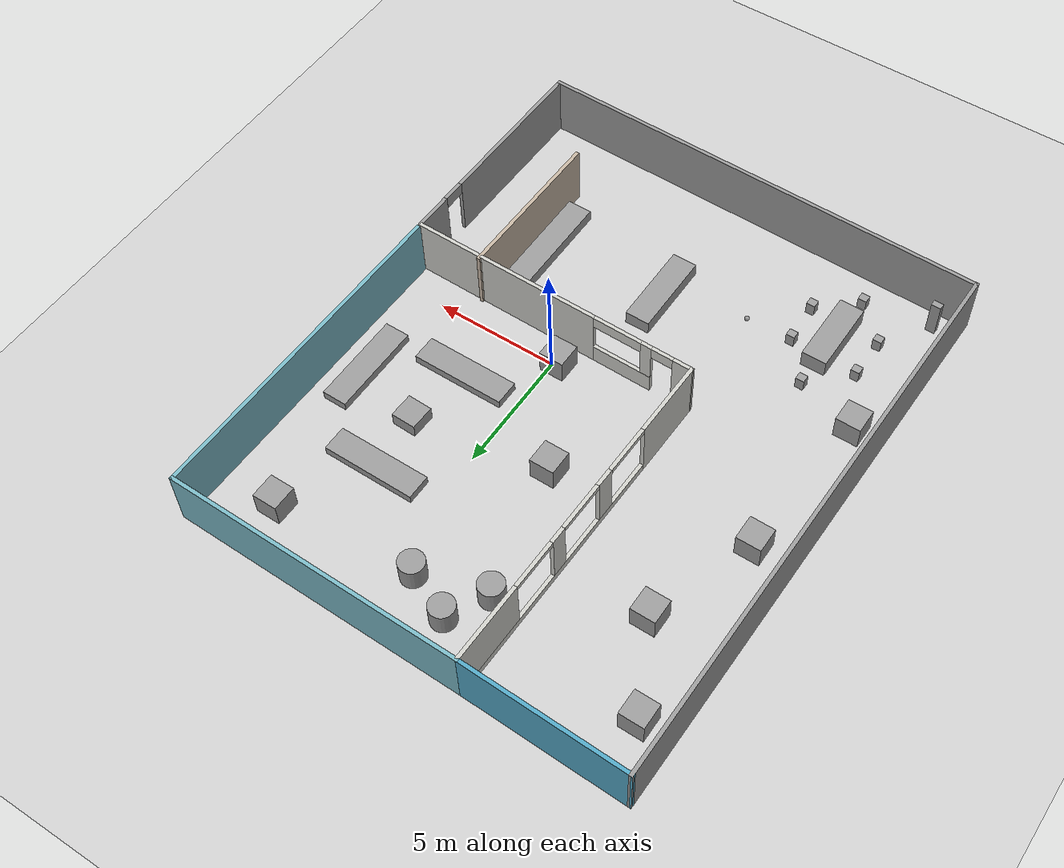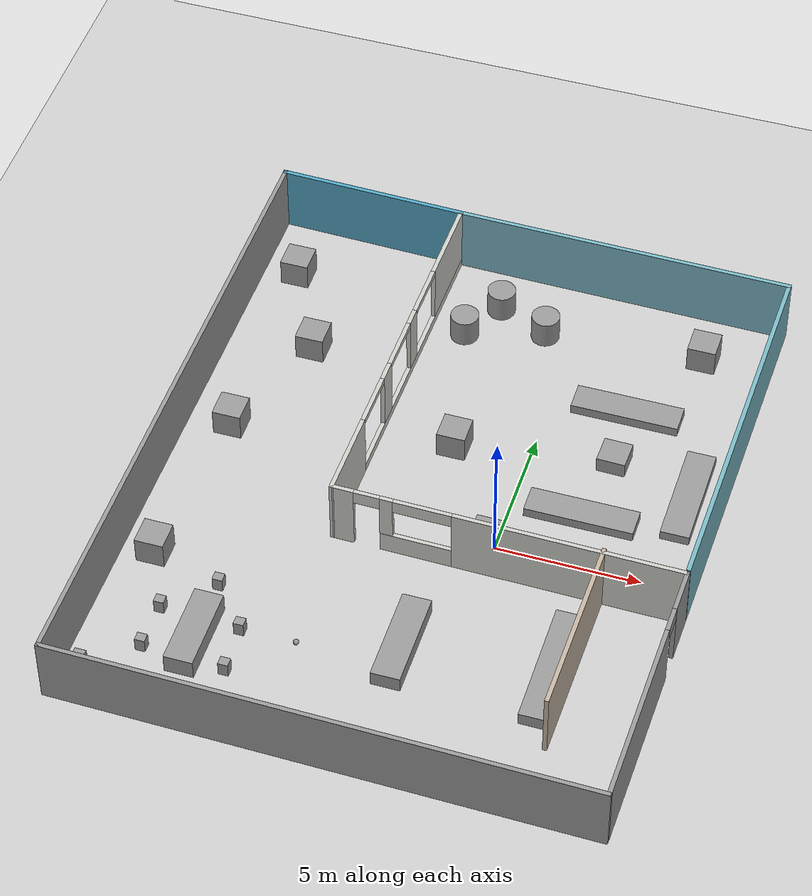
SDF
<sdf version="1.6">
 <world name="default">
  <light name="sun" type="directional">
   <pose>0 0 10 0 -0 0</pose>
   <diffuse>0.8 0.8 0.8 1</diffuse>
   <specular>0.2 0.2 0.2 1</specular>
   <attenuation>
    <range>1000</range>
    <constant>0.9</constant>
    <linear>0.01</linear>
    <quadratic>0.001</quadratic>
   </attenuation>
   <direction>-0.5 0.1 -0.9</direction>
  </light>
  <model name="ground_plane">
   <static>1</static>
   <link name="link">
    <collision name="collision">
     <geometry><plane><normal>0 0 1</normal><size>100 100</size></plane></geometry>
     <surface><friction><ode><mu>100</mu><mu2>50</mu2></ode></friction></surface>
    </collision>
    <visual name="visual">
     <cast_shadows>0</cast_shadows>
     <geometry><plane><normal>0 0 1</normal><size>100 100</size></plane></geometry>
     <material>
      <script><uri>file://media/materials/scripts/gazebo.material</uri><name>Gazebo/Grey</name></script>
     </material>
    </visual>
   </link>
  </model>
  <gravity>0 0 -9.8</gravity>
  <magnetic_field>6e-06 2.3e-05 -4.2e-05</magnetic_field>
  <atmosphere type="adiabatic"/>
  <physics name="default_physics" default="0" type="ode">
   <max_step_size>0.001</max_step_size>
   <real_time_factor>1</real_time_factor>
   <real_time_update_rate>1000</real_time_update_rate>
  </physics>
  <scene><ambient>0.4 0.4 0.4 1</ambient><background>0.7 0.7 0.7 1</background><shadows>1</shadows></scene>
  <spherical_coordinates>
   <surface_model>EARTH_WGS84</surface_model>
   <latitude_deg>0</latitude_deg>
   <longitude_deg>0</longitude_deg>
   <elevation>0</elevation>
   <heading_deg>0</heading_deg>
  </spherical_coordinates>
  <model name="mybuilding">
   <pose>-2.53147 1.21711 0 0 -0 1.55749</pose>
   <link name="Wall_29">
    <pose>-2.31245 -3.25345 0 0 -0 1.5708</pose>
    <visual name="Wall_29_Visual_0">
     <pose>-2.10464 0 1.25 0 -0 0</pose>
     <geometry><box><size>7.91873 0.15 2.5</size></box></geometry>
     <material>
      <script><uri>file://media/materials/scripts/gazebo.material</uri><name>Gazebo/CeilingTiled</name></script>
      <ambient>0.47451 0.713726 0.764706 1</ambient>
     </material>
     <meta><layer>0</layer></meta>
    </visual>
    <collision name="Wall_29_Collision_0">
     <geometry><box><size>7.91873 0.15 2.5</size></box></geometry>
     <pose>-2.10464 0 1.25 0 -0 0</pose>
    </collision>
    <visual name="Wall_29_Visual_1">
     <pose>5.6459 0 1.25 0 -0 0</pose>
     <geometry><box><size>0.836189 0.15 2.5</size></box></geometry>
     <material>
      <script><uri>file://media/materials/scripts/gazebo.material</uri><name>Gazebo/CeilingTiled</name></script>
      <ambient>0.47451 0.713726 0.764706 1</ambient>
     </material>
     <meta><layer>0</layer></meta>
    </visual>
    <collision name="Wall_29_Collision_1">
     <geometry><box><size>0.836189 0.15 2.5</size></box></geometry>
     <pose>5.6459 0 1.25 0 -0 0</pose>
    </collision>
    <visual name="Wall_29_Visual_2">
     <pose>3.09127 0 0.4 0 -0 0</pose>
     <geometry><box><size>2.47308 0.15 0.8</size></box></geometry>
     <material>
      <script><uri>file://media/materials/scripts/gazebo.material</uri><name>Gazebo/CeilingTiled</name></script>
      <ambient>0.47451 0.713726 0.764706 1</ambient>
     </material>
     <meta><layer>0</layer></meta>
    </visual>
    <collision name="Wall_29_Collision_2">
     <geometry><box><size>2.47308 0.15 0.8</size></box></geometry>
     <pose>3.09127 0 0.4 0 -0 0</pose>
    </collision>
    <visual name="Wall_29_Visual_3">
     <pose>4.10266 0 1.65 0 -0 0</pose>
     <geometry><box><size>0.450302 0.15 1.7</size></box></geometry>
     <material>
      <script><uri>file://media/materials/scripts/gazebo.material</uri><name>Gazebo/CeilingTiled</name></script>
      <ambient>0.47451 0.713726 0.764706 1</ambient>
     </material>
     <meta><layer>0</layer></meta>
    </visual>
    <collision name="Wall_29_Collision_3">
     <geometry><box><size>0.450302 0.15 1.7</size></box></geometry>
     <pose>4.10266 0 1.65 0 -0 0</pose>
    </collision>
    <visual name="Wall_29_Visual_4">
     <pose>4.77781 0 2.25 0 -0 0</pose>
     <geometry><box><size>0.9 0.15 0.5</size></box></geometry>
     <material>
      <script><uri>file://media/materials/scripts/gazebo.material</uri><name>Gazebo/CeilingTiled</name></script>
      <ambient>0.47451 0.713726 0.764706 1</ambient>
     </material>
     <meta><layer>0</layer></meta>
    </visual>
    <collision name="Wall_29_Collision_4">
     <geometry><box><size>0.9 0.15 0.5</size></box></geometry>
     <pose>4.77781 0 2.25 0 -0 0</pose>
    </collision>
    <visual name="Wall_29_Visual_5">
     <pose>2.86612 0 2.25 0 -0 0</pose>
     <geometry><box><size>2.02278 0.15 0.5</size></box></geometry>
     <material>
      <script><uri>file://media/materials/scripts/gazebo.material</uri><name>Gazebo/CeilingTiled</name></script>
      <ambient>0.47451 0.713726 0.764706 1</ambient>
     </material>
     <meta><layer>0</layer></meta>
    </visual>
    <collision name="Wall_29_Collision_5">
     <geometry><box><size>2.02278 0.15 0.5</size></box></geometry>
     <pose>2.86612 0 2.25 0 -0 0</pose>
    </collision>
   </link>
   <link name="Wall_30">
    <pose>4.51555 2.69505 0 0 0 -0.005931</pose>
    <visual name="Wall_30_Visual_0">
     <pose>-5.3172 0 1.25 0 -0 0</pose>
     <geometry><box><size>3.1716 0.15 2.5</size></box></geometry>
     <material>
      <script><uri>file://media/materials/scripts/gazebo.material</uri><name>Gazebo/CeilingTiled</name></script>
      <ambient>1 1 1 1</ambient>
     </material>
     <meta><layer>0</layer></meta>
    </visual>
    <collision name="Wall_30_Collision_0">
     <geometry><box><size>3.1716 0.15 2.5</size></box></geometry>
     <pose>-5.3172 0 1.25 0 -0 0</pose>
    </collision>
    <visual name="Wall_30_Visual_1">
     <pose>1.5858 0 0.15 0 -0 0</pose>
     <geometry><box><size>10.6344 0.15 0.3</size></box></geometry>
     <material>
      <script><uri>file://media/materials/scripts/gazebo.material</uri><name>Gazebo/CeilingTiled</name></script>
      <ambient>1 1 1 1</ambient>
     </material>
     <meta><layer>0</layer></meta>
    </visual>
    <collision name="Wall_30_Collision_1">
     <geometry><box><size>10.6344 0.15 0.3</size></box></geometry>
     <pose>1.5858 0 0.15 0 -0 0</pose>
    </collision>
    <visual name="Wall_30_Visual_2">
     <pose>-1.35588 0 1.4 0 -0 0</pose>
     <geometry><box><size>0.751028 0.15 2.2</size></box></geometry>
     <material>
      <script><uri>file://media/materials/scripts/gazebo.material</uri><name>Gazebo/CeilingTiled</name></script>
      <ambient>1 1 1 1</ambient>
     </material>
     <meta><layer>0</layer></meta>
    </visual>
    <collision name="Wall_30_Collision_2">
     <geometry><box><size>0.751028 0.15 2.2</size></box></geometry>
     <pose>-1.35588 0 1.4 0 -0 0</pose>
    </collision>
    <visual name="Wall_30_Visual_3">
     <pose>1.35469 0 1.4 0 -0 0</pose>
     <geometry><box><size>0.670115 0.15 2.2</size></box></geometry>
     <material>
      <script><uri>file://media/materials/scripts/gazebo.material</uri><name>Gazebo/CeilingTiled</name></script>
      <ambient>1 1 1 1</ambient>
     </material>
     <meta><layer>0</layer></meta>
    </visual>
    <collision name="Wall_30_Collision_3">
     <geometry><box><size>0.670115 0.15 2.2</size></box></geometry>
     <pose>1.35469 0 1.4 0 -0 0</pose>
    </collision>
    <visual name="Wall_30_Visual_4">
     <pose>5.29637 0 1.4 0 -0 0</pose>
     <geometry><box><size>3.21326 0.15 2.2</size></box></geometry>
     <material>
      <script><uri>file://media/materials/scripts/gazebo.material</uri><name>Gazebo/CeilingTiled</name></script>
      <ambient>1 1 1 1</ambient>
     </material>
     <meta><layer>0</layer></meta>
    </visual>
    <collision name="Wall_30_Collision_4">
     <geometry><box><size>3.21326 0.15 2.2</size></box></geometry>
     <pose>5.29637 0 1.4 0 -0 0</pose>
    </collision>
    <visual name="Wall_30_Visual_5">
     <pose>-2.7314 0 2.4 0 -0 0</pose>
     <geometry><box><size>2 0.15 0.2</size></box></geometry>
     <material>
      <script><uri>file://media/materials/scripts/gazebo.material</uri><name>Gazebo/CeilingTiled</name></script>
      <ambient>1 1 1 1</ambient>
     </material>
     <meta><layer>0</layer></meta>
    </visual>
    <collision name="Wall_30_Collision_5">
     <geometry><box><size>2 0.15 0.2</size></box></geometry>
     <pose>-2.7314 0 2.4 0 -0 0</pose>
    </collision>
    <visual name="Wall_30_Visual_6">
     <pose>0.01963 0 2.4 0 -0 0</pose>
     <geometry><box><size>2 0.15 0.2</size></box></geometry>
     <material>
      <script><uri>file://media/materials/scripts/gazebo.material</uri><name>Gazebo/CeilingTiled</name></script>
      <ambient>1 1 1 1</ambient>
     </material>
     <meta><layer>0</layer></meta>
    </visual>
    <collision name="Wall_30_Collision_6">
     <geometry><box><size>2 0.15 0.2</size></box></geometry>
     <pose>0.01963 0 2.4 0 -0 0</pose>
    </collision>
    <visual name="Wall_30_Visual_7">
     <pose>2.68974 0 2.4 0 -0 0</pose>
     <geometry><box><size>2 0.15 0.2</size></box></geometry>
     <material>
      <script><uri>file://media/materials/scripts/gazebo.material</uri><name>Gazebo/CeilingTiled</name></script>
      <ambient>1 1 1 1</ambient>
     </material>
     <meta><layer>0</layer></meta>
    </visual>
    <collision name="Wall_30_Collision_7">
     <geometry><box><size>2 0.15 0.2</size></box></geometry>
     <pose>2.68974 0 2.4 0 -0 0</pose>
    </collision>
   </link>
   <link name="Wall_44">
    <collision name="Wall_44_Collision">
     <geometry><box><size>12.094 0.15 2.5</size></box></geometry>
     <pose>0 0 1.25 0 -0 0</pose>
    </collision>
    <visual name="Wall_44_Visual">
     <pose>0 0 1.25 0 -0 0</pose>
     <geometry><box><size>12.094 0.15 2.5</size></box></geometry>
     <material>
      <script><uri>file://media/materials/scripts/gazebo.material</uri><name>Gazebo/Grey</name></script>
      <ambient>0.47451 0.713726 0.764706 1</ambient>
     </material>
     <meta><layer>0</layer></meta>
    </visual>
    <pose>11.3435 -3.31745 0 0 0 -1.5708</pose>
   </link>
   <link name="Wall_46">
    <collision name="Wall_46_Collision">
     <geometry><box><size>13.6168 0.15 2.5</size></box></geometry>
     <pose>0 0 1.25 0 -0 0</pose>
    </collision>
    <visual name="Wall_46_Visual">
     <pose>0 0 1.25 0 -0 0</pose>
     <geometry><box><size>13.6168 0.15 2.5</size></box></geometry>
     <material>
      <script><uri>file://media/materials/scripts/gazebo.material</uri><name>Gazebo/Grey</name></script>
      <ambient>0.47451 0.713726 0.764706 1</ambient>
     </material>
     <meta><layer>0</layer></meta>
    </visual>
    <pose>4.61005 -9.28945 0 0 -0 3.14159</pose>
   </link>
   <link name="Wall_51">
    <collision name="Wall_51_Collision">
     <geometry><box><size>6.78449 0.15 2.5</size></box></geometry>
     <pose>0 0 1.25 0 -0 0</pose>
    </collision>
    <visual name="Wall_51_Visual">
     <pose>0 0 1.25 0 -0 0</pose>
     <geometry><box><size>6.78449 0.15 2.5</size></box></geometry>
     <material>
      <script><uri>file://media/materials/scripts/gazebo.material</uri><name>Gazebo/Grey</name></script>
      <ambient>0.321569 0.647059 0.764706 1</ambient>
     </material>
     <meta><layer>0</layer></meta>
    </visual>
    <pose>11.384 5.97155 0 0 -0 1.55859</pose>
   </link>
   <link name="Wall_52">
    <collision name="Wall_52_Collision">
     <geometry><box><size>23 0.15 2.5</size></box></geometry>
     <pose>0 0 1.25 0 -0 0</pose>
    </collision>
    <visual name="Wall_52_Visual">
     <pose>0 0 1.25 0 -0 0</pose>
     <geometry><box><size>23 0.15 2.5</size></box></geometry>
     <material>
      <script><uri>file://media/materials/scripts/gazebo.material</uri><name>Gazebo/Grey</name></script>
      <ambient>1 1 1 1</ambient>
     </material>
     <meta><layer>0</layer></meta>
    </visual>
    <pose>-0.000454 9.28855 0 0 -0 3.14159</pose>
   </link>
   <link name="Wall_53">
    <collision name="Wall_53_Collision">
     <geometry><box><size>18.728 0.15 2.5</size></box></geometry>
     <pose>0 0 1.25 0 -0 0</pose>
    </collision>
    <visual name="Wall_53_Visual">
     <pose>0 0 1.25 0 -0 0</pose>
     <geometry><box><size>18.728 0.15 2.5</size></box></geometry>
     <material>
      <script><uri>file://media/materials/scripts/gazebo.material</uri><name>Gazebo/Grey</name></script>
      <ambient>1 1 1 1</ambient>
     </material>
     <meta><layer>0</layer></meta>
    </visual>
    <pose>-11.4255 -0.000454 0 0 0 -1.5708</pose>
   </link>
   <link name="Wall_54">
    <pose>-6.87545 -9.28945 0 0 -0 0</pose>
    <visual name="Wall_54_Visual_0">
     <pose>-1.25586 0 1.25 0 -0 0</pose>
     <geometry><box><size>6.73829 0.15 2.5</size></box></geometry>
     <material>
      <script><uri>file://media/materials/scripts/gazebo.material</uri><name>Gazebo/Grey</name></script>
      <ambient>1 1 1 1</ambient>
     </material>
     <meta><layer>0</layer></meta>
    </visual>
    <collision name="Wall_54_Collision_0">
     <geometry><box><size>6.73829 0.15 2.5</size></box></geometry>
     <pose>-1.25586 0 1.25 0 -0 0</pose>
    </collision>
    <visual name="Wall_54_Visual_1">
     <pose>3.81914 0 1.25 0 -0 0</pose>
     <geometry><box><size>1.61171 0.15 2.5</size></box></geometry>
     <material>
      <script><uri>file://media/materials/scripts/gazebo.material</uri><name>Gazebo/Grey</name></script>
      <ambient>1 1 1 1</ambient>
     </material>
     <meta><layer>0</layer></meta>
    </visual>
    <collision name="Wall_54_Collision_1">
     <geometry><box><size>1.61171 0.15 2.5</size></box></geometry>
     <pose>3.81914 0 1.25 0 -0 0</pose>
    </collision>
    <visual name="Wall_54_Visual_2">
     <pose>2.56329 0 2.25 0 -0 0</pose>
     <geometry><box><size>0.9 0.15 0.5</size></box></geometry>
     <material>
      <script><uri>file://media/materials/scripts/gazebo.material</uri><name>Gazebo/Grey</name></script>
      <ambient>1 1 1 1</ambient>
     </material>
     <meta><layer>0</layer></meta>
    </visual>
    <collision name="Wall_54_Collision_2">
     <geometry><box><size>0.9 0.15 0.5</size></box></geometry>
     <pose>2.56329 0 2.25 0 -0 0</pose>
    </collision>
   </link>
   <link name="Wall_56">
    <collision name="Wall_56_Collision">
     <geometry><box><size>6.5 0.15 2.5</size></box></geometry>
     <pose>0 0 1.25 0 -0 0</pose>
    </collision>
    <visual name="Wall_56_Visual">
     <pose>0 0 1.25 0 -0 0</pose>
     <geometry><box><size>6.5 0.15 2.5</size></box></geometry>
     <material>
      <script><uri>file://media/materials/scripts/gazebo.material</uri><name>Gazebo/Grey</name></script>
      <ambient>0.764706 0.701961 0.631373 1</ambient>
     </material>
     <meta><layer>0</layer></meta>
    </visual>
    <pose>-5.40105 -6.4923 0 0 -0 3.14159</pose>
   </link>
   <static>1</static>
  </model>
  <model name="my_ball">
   <link name="link_2">
    <inertial>
     <mass>1</mass>
     <inertia><ixx>0.1</ixx><ixy>0</ixy><ixz>0</ixz><iyy>0.1</iyy><iyz>0</iyz><izz>0.1</izz></inertia>
    </inertial>
    <visual name="visual">
     <geometry><sphere><radius>0.1</radius></sphere></geometry>
     <material>
      <lighting>1</lighting>
      <script><uri>file://media/materials/scripts/gazebo.material</uri><name>Gazebo/Grey</name></script>
      <shader type="pixel"><normal_map>__default__</normal_map></shader>
      <ambient>1 1 1 1</ambient>
      <diffuse>1 1 1 1</diffuse>
      <specular>1 1 1 1</specular>
      <emissive>1 1 1 1</emissive>
     </material>
    </visual>
    <collision name="collision">
     <geometry><sphere><radius>0.1</radius></sphere></geometry>
     <surface>
      <friction>
       <ode><mu>1</mu><mu2>1</mu2><fdir1>0 0 0</fdir1><slip1>0</slip1><slip2>0</slip2></ode>
       <torsional>
        <coefficient>1</coefficient>
        <patch_radius>0</patch_radius>
        <surface_radius>0</surface_radius>
        <use_patch_radius>1</use_patch_radius>
        <ode><slip>0</slip></ode>
       </torsional>
      </friction>
      <bounce><restitution_coefficient>0</restitution_coefficient><threshold>1e+06</threshold></bounce>
      <contact>
       <collide_without_contact>0</collide_without_contact>
       <collide_without_contact_bitmask>1</collide_without_contact_bitmask>
       <collide_bitmask>1</collide_bitmask>
       <ode>
        <soft_cfm>0</soft_cfm>
        <soft_erp>0.2</soft_erp>
        <kp>1e+13</kp>
        <kd>1</kd>
        <max_vel>0.01</max_vel>
        <min_depth>0</min_depth>
       </ode>
       <bullet>
        <split_impulse>1</split_impulse>
        <split_impulse_penetration_threshold>-0.01</split_impulse_penetration_threshold>
        <soft_cfm>0</soft_cfm>
        <soft_erp>0.2</soft_erp>
        <kp>1e+13</kp>
        <kd>1</kd>
       </bullet>
      </contact>
     </surface>
    </collision>
   </link>
   <static>0</static>
   <pose>-4.97501 -5.80262 0.1 0 -0 0</pose>
  </model>
  <model name="unit_box">
   <pose>2.78118 4.85166 0.287195 0 0 -0.023901</pose>
   <link name="link">
    <inertial>
     <mass>1</mass>
     <inertia>
      <ixx>0.166667</ixx>
      <ixy>0</ixy>
      <ixz>0</ixz>
      <iyy>0.166667</iyy>
      <iyz>0</iyz>
      <izz>0.166667</izz>
     </inertia>
    </inertial>
    <collision name="collision"><geometry><box><size>1 1 0.574389</size></box></geometry></collision>
    <visual name="visual">
     <geometry><box><size>1 1 0.574389</size></box></geometry>
     <material>
      <script><name>Gazebo/Grey</name><uri>file://media/materials/scripts/gazebo.material</uri></script>
     </material>
    </visual>
   </link>
  </model>
  <model name="unit_box_0">
   <pose>2.37631 2.16848 0.177755 0 0 -0.000462</pose>
   <link name="link">
    <inertial>
     <mass>1</mass>
     <inertia>
      <ixx>0.166667</ixx>
      <ixy>0</ixy>
      <ixz>0</ixz>
      <iyy>0.166667</iyy>
      <iyz>0</iyz>
      <izz>0.166667</izz>
     </inertia>
    </inertial>
    <collision name="collision"><geometry><box><size>3.77903 1 0.35551</size></box></geometry></collision>
    <visual name="visual">
     <geometry><box><size>3.77903 1 0.35551</size></box></geometry>
     <material>
      <script><name>Gazebo/Grey</name><uri>file://media/materials/scripts/gazebo.material</uri></script>
     </material>
    </visual>
   </link>
  </model>
  <model name="unit_box_0_clone">
   <pose>2.61862 7.18474 0.177755 0 0 -0.000462</pose>
   <link name="link">
    <inertial>
     <mass>1</mass>
     <inertia>
      <ixx>0.166667</ixx>
      <ixy>0</ixy>
      <ixz>0</ixz>
      <iyy>0.166667</iyy>
      <iyz>0</iyz>
      <izz>0.166667</izz>
     </inertia>
    </inertial>
    <collision name="collision"><geometry><box><size>3.77903 1 0.35551</size></box></geometry></collision>
    <visual name="visual">
     <geometry><box><size>3.77903 1 0.35551</size></box></geometry>
     <material>
      <script><name>Gazebo/Grey</name><uri>file://media/materials/scripts/gazebo.material</uri></script>
     </material>
    </visual>
   </link>
  </model>
  <model name="unit_box_0_clone_0">
   <pose>5.59168 3.93403 0.17775 -9e-06 -0 1.57075</pose>
   <link name="link">
    <inertial>
     <mass>1</mass>
     <inertia>
      <ixx>0.166667</ixx>
      <ixy>0</ixy>
      <ixz>0</ixz>
      <iyy>0.166667</iyy>
      <iyz>0</iyz>
      <izz>0.166667</izz>
     </inertia>
    </inertial>
    <collision name="collision"><geometry><box><size>3.77903 1 0.35551</size></box></geometry></collision>
    <visual name="visual">
     <geometry><box><size>3.77903 1 0.35551</size></box></geometry>
     <material>
      <script><name>Gazebo/Grey</name><uri>file://media/materials/scripts/gazebo.material</uri></script>
     </material>
    </visual>
   </link>
  </model>
  <model name="unit_box_1">
   <pose>-1.69144 -4.92382 0.28445 0 -0 1.57079</pose>
   <link name="link">
    <inertial>
     <mass>1</mass>
     <inertia>
      <ixx>0.166667</ixx>
      <ixy>0</ixy>
      <ixz>0</ixz>
      <iyy>0.166667</iyy>
      <iyz>0</iyz>
      <izz>0.166667</izz>
     </inertia>
    </inertial>
    <collision name="collision"><geometry><box><size>3.423 1 0.5689</size></box></geometry></collision>
    <visual name="visual">
     <geometry><box><size>3.423 1 0.5689</size></box></geometry>
     <material>
      <script><name>Gazebo/Grey</name><uri>file://media/materials/scripts/gazebo.material</uri></script>
     </material>
    </visual>
   </link>
  </model>
  <model name="unit_box_2">
   <pose>3.23905 -4.52451 0.235449 1.5708 -1.57005 -1.5708</pose>
   <link name="link">
    <inertial>
     <mass>1</mass>
     <inertia>
      <ixx>0.166667</ixx>
      <ixy>0</ixy>
      <ixz>0</ixz>
      <iyy>0.166667</iyy>
      <iyz>0</iyz>
      <izz>0.166667</izz>
     </inertia>
    </inertial>
    <collision name="collision"><geometry><box><size>0.474227 4.45639 0.987195</size></box></geometry></collision>
    <visual name="visual">
     <geometry><box><size>0.474227 4.45639 0.987195</size></box></geometry>
     <material>
      <script><name>Gazebo/Grey</name><uri>file://media/materials/scripts/gazebo.material</uri></script>
     </material>
    </visual>
   </link>
  </model>
  <model name="unit_box_3">
   <pose>-10.3737 10.2501 0.499995 0 1e-05 0</pose>
   <link name="link">
    <inertial>
     <mass>1</mass>
     <inertia>
      <ixx>0.166667</ixx>
      <ixy>0</ixy>
      <ixz>0</ixz>
      <iyy>0.166667</iyy>
      <iyz>0</iyz>
      <izz>0.166667</izz>
     </inertia>
    </inertial>
    <collision name="collision"><geometry><box><size>1 1 1</size></box></geometry></collision>
    <visual name="visual">
     <geometry><box><size>1 1 1</size></box></geometry>
     <material>
      <script><name>Gazebo/Grey</name><uri>file://media/materials/scripts/gazebo.material</uri></script>
     </material>
    </visual>
   </link>
  </model>
  <model name="unit_box_4">
   <pose>-8.67963 6.919 0.499995 -1e-05 0 0</pose>
   <link name="link">
    <inertial>
     <mass>1</mass>
     <inertia>
      <ixx>0.166667</ixx>
      <ixy>0</ixy>
      <ixz>0</ixz>
      <iyy>0.166667</iyy>
      <iyz>0</iyz>
      <izz>0.166667</izz>
     </inertia>
    </inertial>
    <collision name="collision"><geometry><box><size>1 1 1</size></box></geometry></collision>
    <visual name="visual">
     <geometry><box><size>1 1 1</size></box></geometry>
     <material>
      <script><name>Gazebo/Grey</name><uri>file://media/materials/scripts/gazebo.material</uri></script>
     </material>
    </visual>
   </link>
  </model>
  <model name="unit_box_5">
   <pose>-10.2068 2.66141 0.499995 0 1e-05 0</pose>
   <link name="link">
    <inertial>
     <mass>1</mass>
     <inertia>
      <ixx>0.166667</ixx>
      <ixy>0</ixy>
      <ixz>0</ixz>
      <iyy>0.166667</iyy>
      <iyz>0</iyz>
      <izz>0.166667</izz>
     </inertia>
    </inertial>
    <collision name="collision"><geometry><box><size>1 1 1</size></box></geometry></collision>
    <visual name="visual">
     <geometry><box><size>1 1 1</size></box></geometry>
     <material>
      <script><name>Gazebo/Grey</name><uri>file://media/materials/scripts/gazebo.material</uri></script>
     </material>
    </visual>
   </link>
  </model>
  <model name="unit_box_6">
   <pose>-10.9898 -9.2617 0.746314 -1e-06 -2e-06 -0.003727</pose>
   <link name="link">
    <inertial>
     <mass>1</mass>
     <inertia>
      <ixx>0.166667</ixx>
      <ixy>0</ixy>
      <ixz>0</ixz>
      <iyy>0.166667</iyy>
      <iyz>0</iyz>
      <izz>0.166667</izz>
     </inertia>
    </inertial>
    <collision name="collision"><geometry><box><size>0.387024 0.256337 1.49263</size></box></geometry></collision>
    <visual name="visual">
     <geometry><box><size>0.387024 0.256337 1.49263</size></box></geometry>
     <material>
      <script><name>Gazebo/Grey</name><uri>file://media/materials/scripts/gazebo.material</uri></script>
     </material>
    </visual>
   </link>
  </model>
  <model name="unit_box_7">
   <pose>-0.255912 -0.085731 0.499995 0 1e-05 0</pose>
   <link name="link">
    <inertial>
     <mass>1</mass>
     <inertia>
      <ixx>0.166667</ixx>
      <ixy>0</ixy>
      <ixz>0</ixz>
      <iyy>0.166667</iyy>
      <iyz>0</iyz>
      <izz>0.166667</izz>
     </inertia>
    </inertial>
    <collision name="collision"><geometry><box><size>1 1 1</size></box></geometry></collision>
    <visual name="visual">
     <geometry><box><size>1 1 1</size></box></geometry>
     <material>
      <script><name>Gazebo/Grey</name><uri>file://media/materials/scripts/gazebo.material</uri></script>
     </material>
    </visual>
   </link>
  </model>
  <model name="unit_cylinder">
   <pose>-2.94738 10.7391 0.499997 4e-06 3e-06 -0</pose>
   <link name="link">
    <inertial>
     <mass>1</mass>
     <inertia><ixx>0.145833</ixx><ixy>0</ixy><ixz>0</ixz><iyy>0.145833</iyy><iyz>0</iyz><izz>0.125</izz></inertia>
    </inertial>
    <collision name="collision">
     <geometry><cylinder><radius>0.5</radius><length>1</length></cylinder></geometry>
    </collision>
    <visual name="visual">
     <geometry><cylinder><radius>0.5</radius><length>1</length></cylinder></geometry>
     <material>
      <script><name>Gazebo/Grey</name><uri>file://media/materials/scripts/gazebo.material</uri></script>
     </material>
    </visual>
   </link>
  </model>
  <model name="unit_cylinder_0">
   <pose>-3.84146 9.18096 0.499994 -4e-06 -3e-06 -0</pose>
   <link name="link">
    <inertial>
     <mass>1</mass>
     <inertia><ixx>0.145833</ixx><ixy>0</ixy><ixz>0</ixz><iyy>0.145833</iyy><iyz>0</iyz><izz>0.125</izz></inertia>
    </inertial>
    <collision name="collision">
     <geometry><cylinder><radius>0.5</radius><length>1</length></cylinder></geometry>
    </collision>
    <visual name="visual">
     <geometry><cylinder><radius>0.5</radius><length>1</length></cylinder></geometry>
     <material>
      <script><name>Gazebo/Grey</name><uri>file://media/materials/scripts/gazebo.material</uri></script>
     </material>
    </visual>
   </link>
  </model>
  <model name="unit_cylinder_1">
   <pose>-1.11187 9.96012 0.499997 4e-06 3e-06 -0</pose>
   <link name="link">
    <inertial>
     <mass>1</mass>
     <inertia><ixx>0.145833</ixx><ixy>0</ixy><ixz>0</ixz><iyy>0.145833</iyy><iyz>0</iyz><izz>0.125</izz></inertia>
    </inertial>
    <collision name="collision">
     <geometry><cylinder><radius>0.5</radius><length>1</length></cylinder></geometry>
    </collision>
    <visual name="visual">
     <geometry><cylinder><radius>0.5</radius><length>1</length></cylinder></geometry>
     <material>
      <script><name>Gazebo/Grey</name><uri>file://media/materials/scripts/gazebo.material</uri></script>
     </material>
    </visual>
   </link>
  </model>
  <model name="unit_box_8">
   <pose>-6.7943 -7.53838 0.262147 0 -0 0</pose>
   <link name="link">
    <inertial>
     <mass>1</mass>
     <inertia>
      <ixx>0.166667</ixx>
      <ixy>0</ixy>
      <ixz>0</ixz>
      <iyy>0.166667</iyy>
      <iyz>0</iyz>
      <izz>0.166667</izz>
     </inertia>
    </inertial>
    <collision name="collision">
     <geometry><box><size>0.346513 0.318947 0.524294</size></box></geometry>
    </collision>
    <visual name="visual">
     <geometry><box><size>0.346513 0.318947 0.524294</size></box></geometry>
     <material>
      <script><name>Gazebo/Grey</name><uri>file://media/materials/scripts/gazebo.material</uri></script>
     </material>
    </visual>
   </link>
  </model>
  <model name="unit_box_9">
   <pose>-10.6865 -3.50489 0.499995 0 1e-05 0</pose>
   <link name="link">
    <inertial>
     <mass>1</mass>
     <inertia>
      <ixx>0.166667</ixx>
      <ixy>0</ixy>
      <ixz>0</ixz>
      <iyy>0.166667</iyy>
      <iyz>0</iyz>
      <izz>0.166667</izz>
     </inertia>
    </inertial>
    <collision name="collision"><geometry><box><size>1 1 1</size></box></geometry></collision>
    <visual name="visual">
     <geometry><box><size>1 1 1</size></box></geometry>
     <material>
      <script><name>Gazebo/Grey</name><uri>file://media/materials/scripts/gazebo.material</uri></script>
     </material>
    </visual>
   </link>
  </model>
  <model name="unit_box_10">
   <pose>-8.16632 -6.60489 0.360171 0 -0 0</pose>
   <link name="link">
    <inertial>
     <mass>1</mass>
     <inertia>
      <ixx>0.166667</ixx>
      <ixy>0</ixy>
      <ixz>0</ixz>
      <iyy>0.166667</iyy>
      <iyz>0</iyz>
      <izz>0.166667</izz>
     </inertia>
    </inertial>
    <collision name="collision"><geometry><box><size>1 2.95153 0.720342</size></box></geometry></collision>
    <visual name="visual">
     <geometry><box><size>1 2.95153 0.720342</size></box></geometry>
     <material>
      <script><name>Gazebo/Grey</name><uri>file://media/materials/scripts/gazebo.material</uri></script>
     </material>
    </visual>
   </link>
  </model>
  <model name="unit_box_11">
   <pose>4.51203 10.3952 0.499995 -1e-05 0 0</pose>
   <link name="link">
    <inertial>
     <mass>1</mass>
     <inertia>
      <ixx>0.166667</ixx>
      <ixy>0</ixy>
      <ixz>0</ixz>
      <iyy>0.166667</iyy>
      <iyz>0</iyz>
      <izz>0.166667</izz>
     </inertia>
    </inertial>
    <collision name="collision"><geometry><box><size>1 1 1</size></box></geometry></collision>
    <visual name="visual">
     <geometry><box><size>1 1 1</size></box></geometry>
     <material>
      <script><name>Gazebo/Grey</name><uri>file://media/materials/scripts/gazebo.material</uri></script>
     </material>
    </visual>
   </link>
  </model>
  <model name="unit_box_8_clone">
   <pose>-9.67088 -5.71166 0.262147 0 -0 0</pose>
   <link name="link">
    <inertial>
     <mass>1</mass>
     <inertia>
      <ixx>0.166667</ixx>
      <ixy>0</ixy>
      <ixz>0</ixz>
      <iyy>0.166667</iyy>
      <iyz>0</iyz>
      <izz>0.166667</izz>
     </inertia>
    </inertial>
    <collision name="collision">
     <geometry><box><size>0.346513 0.318947 0.524294</size></box></geometry>
    </collision>
    <visual name="visual">
     <geometry><box><size>0.346513 0.318947 0.524294</size></box></geometry>
     <material>
      <script><name>Gazebo/Grey</name><uri>file://media/materials/scripts/gazebo.material</uri></script>
     </material>
    </visual>
   </link>
  </model>
  <model name="unit_box_8_clone_0">
   <pose>-6.87918 -5.83103 0.262147 0 -0 0</pose>
   <link name="link">
    <inertial>
     <mass>1</mass>
     <inertia>
      <ixx>0.166667</ixx>
      <ixy>0</ixy>
      <ixz>0</ixz>
      <iyy>0.166667</iyy>
      <iyz>0</iyz>
      <izz>0.166667</izz>
     </inertia>
    </inertial>
    <collision name="collision">
     <geometry><box><size>0.346513 0.318947 0.524294</size></box></geometry>
    </collision>
    <visual name="visual">
     <geometry><box><size>0.346513 0.318947 0.524294</size></box></geometry>
     <material>
      <script><name>Gazebo/Grey</name><uri>file://media/materials/scripts/gazebo.material</uri></script>
     </material>
    </visual>
   </link>
  </model>
  <model name="unit_box_8_clone_1">
   <pose>-9.68698 -7.39606 0.262147 0 -0 0</pose>
   <link name="link">
    <inertial>
     <mass>1</mass>
     <inertia>
      <ixx>0.166667</ixx>
      <ixy>0</ixy>
      <ixz>0</ixz>
      <iyy>0.166667</iyy>
      <iyz>0</iyz>
      <izz>0.166667</izz>
     </inertia>
    </inertial>
    <collision name="collision">
     <geometry><box><size>0.346513 0.318947 0.524294</size></box></geometry>
    </collision>
    <visual name="visual">
     <geometry><box><size>0.346513 0.318947 0.524294</size></box></geometry>
     <material>
      <script><name>Gazebo/Grey</name><uri>file://media/materials/scripts/gazebo.material</uri></script>
     </material>
    </visual>
   </link>
  </model>
  <model name="unit_box_8_clone_2">
   <pose>-8.30613 -8.82299 0.262147 0 -0 0</pose>
   <link name="link">
    <inertial>
     <mass>1</mass>
     <inertia>
      <ixx>0.166667</ixx>
      <ixy>0</ixy>
      <ixz>0</ixz>
      <iyy>0.166667</iyy>
      <iyz>0</iyz>
      <izz>0.166667</izz>
     </inertia>
    </inertial>
    <collision name="collision">
     <geometry><box><size>0.346513 0.318947 0.524294</size></box></geometry>
    </collision>
    <visual name="visual">
     <geometry><box><size>0.346513 0.318947 0.524294</size></box></geometry>
     <material>
      <script><name>Gazebo/Grey</name><uri>file://media/materials/scripts/gazebo.material</uri></script>
     </material>
    </visual>
   </link>
  </model>
  <model name="unit_box_8_clone_3">
   <pose>-8.16799 -4.26601 0.262147 0 -0 0</pose>
   <link name="link">
    <inertial>
     <mass>1</mass>
     <inertia>
      <ixx>0.166667</ixx>
      <ixy>0</ixy>
      <ixz>0</ixz>
      <iyy>0.166667</iyy>
      <iyz>0</iyz>
      <izz>0.166667</izz>
     </inertia>
    </inertial>
    <collision name="collision">
     <geometry><box><size>0.346513 0.318947 0.524294</size></box></geometry>
    </collision>
    <visual name="visual">
     <geometry><box><size>0.346513 0.318947 0.524294</size></box></geometry>
     <material>
      <script><name>Gazebo/Grey</name><uri>file://media/materials/scripts/gazebo.material</uri></script>
     </material>
    </visual>
   </link>
  </model>
  <model name="unit_box_12">
   <pose>-2.60925 3.94947 0.499995 0 1e-05 0</pose>
   <link name="link">
    <inertial>
     <mass>1</mass>
     <inertia>
      <ixx>0.166667</ixx>
      <ixy>0</ixy>
      <ixz>0</ixz>
      <iyy>0.166667</iyy>
      <iyz>0</iyz>
      <izz>0.166667</izz>
     </inertia>
    </inertial>
    <collision name="collision"><geometry><box><size>1 1 1</size></box></geometry></collision>
    <visual name="visual">
     <geometry><box><size>1 1 1</size></box></geometry>
     <material>
      <script><name>Gazebo/Grey</name><uri>file://media/materials/scripts/gazebo.material</uri></script>
     </material>
    </visual>
   </link>
  </model>
 </world>
</sdf>
